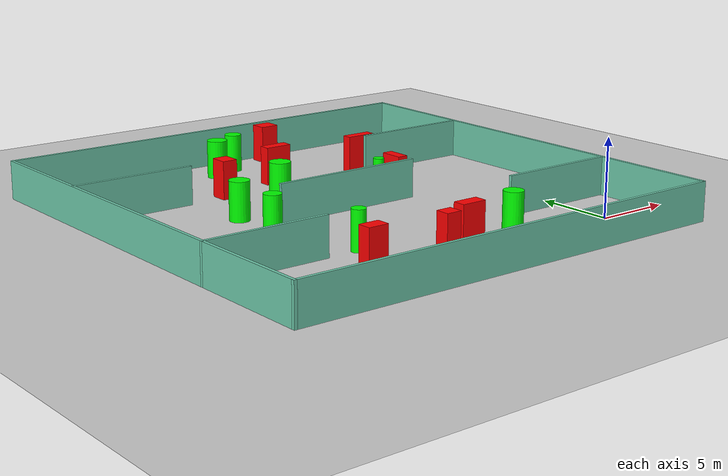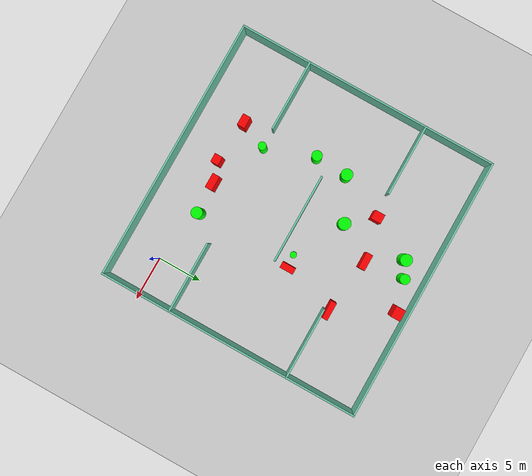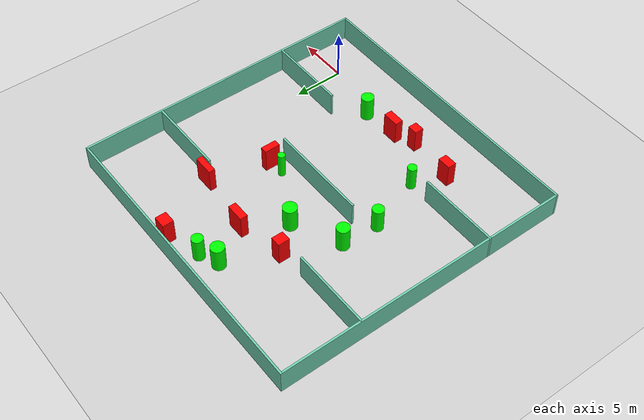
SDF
<sdf version="1.7">
 <world name="default">
  <light name="sun" type="directional">
   <pose>0 0 10 0 -0 0</pose>
   <diffuse>0.8 0.8 0.8 1</diffuse>
   <specular>0.2 0.2 0.2 1</specular>
   <attenuation>
    <range>1000</range>
    <constant>0.9</constant>
    <linear>0.01</linear>
    <quadratic>0.001</quadratic>
   </attenuation>
   <direction>-0.5 0.1 -0.9</direction>
   <spot><inner_angle>0</inner_angle><outer_angle>0</outer_angle><falloff>0</falloff></spot>
  </light>
  <model name="ground_plane">
   <static>1</static>
   <link name="link">
    <collision name="collision">
     <geometry><plane><normal>0 0 1</normal><size>100 100</size></plane></geometry>
     <surface>
      <contact><collide_bitmask>65535</collide_bitmask></contact>
      <friction><ode><mu>100</mu><mu2>50</mu2></ode></friction>
     </surface>
    </collision>
    <visual name="visual">
     <cast_shadows>0</cast_shadows>
     <geometry><plane><normal>0 0 1</normal><size>100 100</size></plane></geometry>
     <material>
      <script><uri>file://media/materials/scripts/gazebo.material</uri><name>Gazebo/Grey</name></script>
     </material>
    </visual>
   </link>
  </model>
  <gravity>0 0 -9.8</gravity>
  <magnetic_field>6e-06 2.3e-05 -4.2e-05</magnetic_field>
  <atmosphere type="adiabatic"/>
  <physics type="ode">
   <max_step_size>0.001</max_step_size>
   <real_time_factor>1</real_time_factor>
   <real_time_update_rate>1000</real_time_update_rate>
  </physics>
  <scene><ambient>0.4 0.4 0.4 1</ambient><background>0.7 0.7 0.7 1</background><shadows>1</shadows></scene>
  <spherical_coordinates>
   <surface_model>EARTH_WGS84</surface_model>
   <latitude_deg>0</latitude_deg>
   <longitude_deg>0</longitude_deg>
   <elevation>0</elevation>
   <heading_deg>0</heading_deg>
  </spherical_coordinates>
  <model name="my_base_walls">
   <link name="Wall_10">
    <collision name="Wall_10_Collision">
     <geometry><box><size>8.2 0.2 2.5</size></box></geometry>
     <pose>0 0 1.25 0 -0 0</pose>
    </collision>
    <visual name="Wall_10_Visual">
     <pose>0 0 1.25 0 -0 0</pose>
     <geometry><box><size>8.2 0.2 2.5</size></box></geometry>
     <material>
      <script><uri>file://media/materials/scripts/gazebo.material</uri><name>Gazebo/Grey</name></script>
      <ambient>0.435294 0.796078 0.67451 1</ambient>
     </material>
     <meta><layer>0</layer></meta>
    </visual>
    <pose>-11 -7 0 0 -0 0</pose>
   </link>
   <link name="Wall_12">
    <collision name="Wall_12_Collision">
     <geometry><box><size>8.2 0.2 2.5</size></box></geometry>
     <pose>0 0 1.25 0 -0 0</pose>
    </collision>
    <visual name="Wall_12_Visual">
     <pose>0 0 1.25 0 -0 0</pose>
     <geometry><box><size>8.2 0.2 2.5</size></box></geometry>
     <material>
      <script><uri>file://media/materials/scripts/gazebo.material</uri><name>Gazebo/Grey</name></script>
      <ambient>0.435294 0.796078 0.67451 1</ambient>
     </material>
     <meta><layer>0</layer></meta>
    </visual>
    <pose>-11 7 0 0 -0 0</pose>
   </link>
   <link name="Wall_14">
    <collision name="Wall_14_Collision">
     <geometry><box><size>8.2 0.2 2.5</size></box></geometry>
     <pose>0 0 1.25 0 -0 0</pose>
    </collision>
    <visual name="Wall_14_Visual">
     <pose>0 0 1.25 0 -0 0</pose>
     <geometry><box><size>8.2 0.2 2.5</size></box></geometry>
     <material>
      <script><uri>file://media/materials/scripts/gazebo.material</uri><name>Gazebo/Grey</name></script>
      <ambient>0.435294 0.796078 0.67451 1</ambient>
     </material>
     <meta><layer>0</layer></meta>
    </visual>
    <pose>11 7 0 0 -0 3.14159</pose>
   </link>
   <link name="Wall_16">
    <collision name="Wall_16_Collision">
     <geometry><box><size>10.2 0.2 2.5</size></box></geometry>
     <pose>0 0 1.25 0 -0 0</pose>
    </collision>
    <visual name="Wall_16_Visual">
     <pose>0 0 1.25 0 -0 0</pose>
     <geometry><box><size>10.2 0.2 2.5</size></box></geometry>
     <material>
      <script><uri>file://media/materials/scripts/gazebo.material</uri><name>Gazebo/Grey</name></script>
      <ambient>0.435294 0.796078 0.67451 1</ambient>
     </material>
     <meta><layer>0</layer></meta>
    </visual>
    <pose>0 0 0 0 -0 3.14159</pose>
   </link>
   <link name="Wall_2">
    <collision name="Wall_2_Collision">
     <geometry><box><size>30.2 0.2 2.5</size></box></geometry>
     <pose>0 0 1.25 0 -0 0</pose>
    </collision>
    <visual name="Wall_2_Visual">
     <pose>0 0 1.25 0 -0 0</pose>
     <geometry><box><size>30.2 0.2 2.5</size></box></geometry>
     <material>
      <script><uri>file://media/materials/scripts/gazebo.material</uri><name>Gazebo/Grey</name></script>
      <ambient>0.435294 0.796078 0.67451 1</ambient>
     </material>
     <meta><layer>0</layer></meta>
    </visual>
    <pose>0 -15 0 0 -0 3.14159</pose>
   </link>
   <link name="Wall_3">
    <collision name="Wall_3_Collision">
     <geometry><box><size>30.2 0.2 2.5</size></box></geometry>
     <pose>0 0 1.25 0 -0 0</pose>
    </collision>
    <visual name="Wall_3_Visual">
     <pose>0 0 1.25 0 -0 0</pose>
     <geometry><box><size>30.2 0.2 2.5</size></box></geometry>
     <material>
      <script><uri>file://media/materials/scripts/gazebo.material</uri><name>Gazebo/Grey</name></script>
      <ambient>0.435294 0.796078 0.67451 1</ambient>
     </material>
     <meta><layer>0</layer></meta>
    </visual>
    <pose>-15 0 0 0 -0 1.5708</pose>
   </link>
   <link name="Wall_4">
    <collision name="Wall_4_Collision">
     <geometry><box><size>30.2 0.2 2.5</size></box></geometry>
     <pose>0 0 1.25 0 -0 0</pose>
    </collision>
    <visual name="Wall_4_Visual">
     <pose>0 0 1.25 0 -0 0</pose>
     <geometry><box><size>30.2 0.2 2.5</size></box></geometry>
     <material>
      <script><uri>file://media/materials/scripts/gazebo.material</uri><name>Gazebo/Grey</name></script>
      <ambient>0.435294 0.796078 0.67451 1</ambient>
     </material>
     <meta><layer>0</layer></meta>
    </visual>
    <pose>0 15 0 0 -0 0</pose>
   </link>
   <link name="Wall_6">
    <collision name="Wall_6_Collision">
     <geometry><box><size>30.2 0.2 2.5</size></box></geometry>
     <pose>0 0 1.25 0 -0 0</pose>
    </collision>
    <visual name="Wall_6_Visual">
     <pose>0 0 1.25 0 -0 0</pose>
     <geometry><box><size>30.2 0.2 2.5</size></box></geometry>
     <material>
      <script><uri>file://media/materials/scripts/gazebo.material</uri><name>Gazebo/Grey</name></script>
      <ambient>0.435294 0.796078 0.67451 1</ambient>
     </material>
     <meta><layer>0</layer></meta>
    </visual>
    <pose>15 0 0 0 -0 1.5708</pose>
   </link>
   <link name="Wall_8">
    <collision name="Wall_8_Collision">
     <geometry><box><size>8.2 0.2 2.5</size></box></geometry>
     <pose>0 0 1.25 0 -0 0</pose>
    </collision>
    <visual name="Wall_8_Visual">
     <pose>0 0 1.25 0 -0 0</pose>
     <geometry><box><size>8.2 0.2 2.5</size></box></geometry>
     <material>
      <script><uri>file://media/materials/scripts/gazebo.material</uri><name>Gazebo/Grey</name></script>
      <ambient>0.435294 0.796078 0.67451 1</ambient>
     </material>
     <meta><layer>0</layer></meta>
    </visual>
    <pose>11 -7 0 0 -0 3.14159</pose>
   </link>
   <static>1</static>
   <pose>-11 11 0 0 -0 0</pose>
  </model>
  <model name="cylinder1">
   <static>1</static>
   <link name="link">
    <inertial>
     <mass>1</mass>
     <inertia><ixx>0.5</ixx><ixy>0</ixy><ixz>0</ixz><iyy>0.5</iyy><iyz>0</iyz><izz>1</izz></inertia>
    </inertial>
    <collision name="collision">
     <geometry><cylinder><radius>0.44831866201501747</radius><length>2.5</length></cylinder></geometry>
    </collision>
    <visual name="visual">
     <geometry><cylinder><radius>0.44831866201501747</radius><length>2.5</length></cylinder></geometry>
     <material>
      <ambient>0 1 0 1</ambient>
      <diffuse>0 1 0 1</diffuse>
      <specular>0.1 0.1 0.1 1</specular>
      <emissive>0 0 0 0</emissive>
     </material>
    </visual>
   </link>
   <pose>-15.807781865561793 3.957164447224491 1.25 0 0 0</pose>
  </model>
  <model name="cylinder2">
   <static>1</static>
   <link name="link">
    <inertial>
     <mass>1</mass>
     <inertia><ixx>0.5</ixx><ixy>0</ixy><ixz>0</ixz><iyy>0.5</iyy><iyz>0</iyz><izz>1</izz></inertia>
    </inertial>
    <collision name="collision">
     <geometry><cylinder><radius>0.6936114545926203</radius><length>2.5</length></cylinder></geometry>
    </collision>
    <visual name="visual">
     <geometry><cylinder><radius>0.6936114545926203</radius><length>2.5</length></cylinder></geometry>
     <material>
      <ambient>0 1 0 1</ambient>
      <diffuse>0 1 0 1</diffuse>
      <specular>0.1 0.1 0.1 1</specular>
      <emissive>0 0 0 0</emissive>
     </material>
    </visual>
   </link>
   <pose>-12.92227238842987 15.49933880950626 1.25 0 0 0</pose>
  </model>
  <model name="cylinder3">
   <static>1</static>
   <link name="link">
    <inertial>
     <mass>1</mass>
     <inertia><ixx>0.5</ixx><ixy>0</ixy><ixz>0</ixz><iyy>0.5</iyy><iyz>0</iyz><izz>1</izz></inertia>
    </inertial>
    <collision name="collision">
     <geometry><cylinder><radius>0.35268478373292544</radius><length>2.5</length></cylinder></geometry>
    </collision>
    <visual name="visual">
     <geometry><cylinder><radius>0.35268478373292544</radius><length>2.5</length></cylinder></geometry>
     <material>
      <ambient>0 1 0 1</ambient>
      <diffuse>0 1 0 1</diffuse>
      <specular>0.1 0.1 0.1 1</specular>
      <emissive>0 0 0 0</emissive>
     </material>
    </visual>
   </link>
   <pose>-7.447559282882473 12.422763055796677 1.25 0 0 0</pose>
  </model>
  <model name="cylinder4">
   <static>1</static>
   <link name="link">
    <inertial>
     <mass>1</mass>
     <inertia><ixx>0.5</ixx><ixy>0</ixy><ixz>0</ixz><iyy>0.5</iyy><iyz>0</iyz><izz>1</izz></inertia>
    </inertial>
    <collision name="collision">
     <geometry><cylinder><radius>0.6632686011080747</radius><length>2.5</length></cylinder></geometry>
    </collision>
    <visual name="visual">
     <geometry><cylinder><radius>0.6632686011080747</radius><length>2.5</length></cylinder></geometry>
     <material>
      <ambient>0 1 0 1</ambient>
      <diffuse>0 1 0 1</diffuse>
      <specular>0.1 0.1 0.1 1</specular>
      <emissive>0 0 0 0</emissive>
     </material>
    </visual>
   </link>
   <pose>-12.736705181921577 22.971193129316145 1.25 0 0 0</pose>
  </model>
  <model name="cylinder5">
   <static>1</static>
   <link name="link">
    <inertial>
     <mass>1</mass>
     <inertia><ixx>0.5</ixx><ixy>0</ixy><ixz>0</ixz><iyy>0.5</iyy><iyz>0</iyz><izz>1</izz></inertia>
    </inertial>
    <collision name="collision">
     <geometry><cylinder><radius>0.5696487922767688</radius><length>2.5</length></cylinder></geometry>
    </collision>
    <visual name="visual">
     <geometry><cylinder><radius>0.5696487922767688</radius><length>2.5</length></cylinder></geometry>
     <material>
      <ambient>0 1 0 1</ambient>
      <diffuse>0 1 0 1</diffuse>
      <specular>0.1 0.1 0.1 1</specular>
      <emissive>0 0 0 0</emissive>
     </material>
    </visual>
   </link>
   <pose>-17.73682630628948 9.489453241869224 1.25 0 0 0</pose>
  </model>
  <model name="cylinder6">
   <static>1</static>
   <link name="link">
    <inertial>
     <mass>1</mass>
     <inertia><ixx>0.5</ixx><ixy>0</ixy><ixz>0</ixz><iyy>0.5</iyy><iyz>0</iyz><izz>1</izz></inertia>
    </inertial>
    <collision name="collision">
     <geometry><cylinder><radius>0.6432182943507114</radius><length>2.5</length></cylinder></geometry>
    </collision>
    <visual name="visual">
     <geometry><cylinder><radius>0.6432182943507114</radius><length>2.5</length></cylinder></geometry>
     <material>
      <ambient>0 1 0 1</ambient>
      <diffuse>0 1 0 1</diffuse>
      <specular>0.1 0.1 0.1 1</specular>
      <emissive>0 0 0 0</emissive>
     </material>
    </visual>
   </link>
   <pose>-17.530956168196 13.206119030490417 1.25 0 0 0</pose>
  </model>
  <model name="cylinder7">
   <static>1</static>
   <link name="link">
    <inertial>
     <mass>1</mass>
     <inertia><ixx>0.5</ixx><ixy>0</ixy><ixz>0</ixz><iyy>0.5</iyy><iyz>0</iyz><izz>1</izz></inertia>
    </inertial>
    <collision name="collision">
     <geometry><cylinder><radius>0.5582913543954902</radius><length>2.5</length></cylinder></geometry>
    </collision>
    <visual name="visual">
     <geometry><cylinder><radius>0.5582913543954902</radius><length>2.5</length></cylinder></geometry>
     <material>
      <ambient>0 1 0 1</ambient>
      <diffuse>0 1 0 1</diffuse>
      <specular>0.1 0.1 0.1 1</specular>
      <emissive>0 0 0 0</emissive>
     </material>
    </visual>
   </link>
   <pose>-10.917996656647293 23.820491288753047 1.25 0 0 0</pose>
  </model>
  <model name="cylinder8">
   <static>1</static>
   <link name="link">
    <inertial>
     <mass>1</mass>
     <inertia><ixx>0.5</ixx><ixy>0</ixy><ixz>0</ixz><iyy>0.5</iyy><iyz>0</iyz><izz>1</izz></inertia>
    </inertial>
    <collision name="collision">
     <geometry><cylinder><radius>0.6291642385826841</radius><length>2.5</length></cylinder></geometry>
    </collision>
    <visual name="visual">
     <geometry><cylinder><radius>0.6291642385826841</radius><length>2.5</length></cylinder></geometry>
     <material>
      <ambient>0 1 0 1</ambient>
      <diffuse>0 1 0 1</diffuse>
      <specular>0.1 0.1 0.1 1</specular>
      <emissive>0 0 0 0</emissive>
     </material>
    </visual>
   </link>
   <pose>-6.335661327778549 1.4355758026455474 1.25 0 0 0</pose>
  </model>
  <model name="box1">
   <static>1</static>
   <link name="link">
    <inertial>
     <mass>1</mass>
     <inertia><ixx>0.083</ixx><ixy>0</ixy><ixz>0</ixz><iyy>0.083</iyy><iyz>0</iyz><izz>0.083</izz></inertia>
    </inertial>
    <collision name="collision">
     <geometry><box><size>1.6718461843493309 0.819425430054747 2.5</size></box></geometry>
    </collision>
    <visual name="visual">
     <geometry><box><size>1.6718461843493309 0.819425430054747 2.5</size></box></geometry>
     <material>
      <ambient>1 0 0 1</ambient>
      <diffuse>1 0 0 1</diffuse>
      <specular>0.1 0.1 0.1 1</specular>
      <emissive>0 0 0 0</emissive>
     </material>
    </visual>
    <sensor name="my_contact" type="contact">
     <contact><collision>box_collision</collision><topic>__default_topic__</topic></contact>
    </sensor>
   </link>
   <pose>-9.954424866432186 1.2559871586504023 1.25 0 0 0</pose>
  </model>
  <model name="box2">
   <static>1</static>
   <link name="link">
    <inertial>
     <mass>1</mass>
     <inertia><ixx>0.083</ixx><ixy>0</ixy><ixz>0</ixz><iyy>0.083</iyy><iyz>0</iyz><izz>0.083</izz></inertia>
    </inertial>
    <collision name="collision">
     <geometry><box><size>1.3368318768686147 0.8753744190171997 2.5</size></box></geometry>
    </collision>
    <visual name="visual">
     <geometry><box><size>1.3368318768686147 0.8753744190171997 2.5</size></box></geometry>
     <material>
      <ambient>1 0 0 1</ambient>
      <diffuse>1 0 0 1</diffuse>
      <specular>0.1 0.1 0.1 1</specular>
      <emissive>0 0 0 0</emissive>
     </material>
    </visual>
    <sensor name="my_contact" type="contact">
     <contact><collision>box_collision</collision><topic>__default_topic__</topic></contact>
    </sensor>
   </link>
   <pose>-17.164290165089895 0.966707244185474 1.25 0 0 0</pose>
  </model>
  <model name="box3">
   <static>1</static>
   <link name="link">
    <inertial>
     <mass>1</mass>
     <inertia><ixx>0.083</ixx><ixy>0</ixy><ixz>0</ixz><iyy>0.083</iyy><iyz>0</iyz><izz>0.083</izz></inertia>
    </inertial>
    <collision name="collision">
     <geometry><box><size>2.0332242872479265 0.634169141336373 2.5</size></box></geometry>
    </collision>
    <visual name="visual">
     <geometry><box><size>2.0332242872479265 0.634169141336373 2.5</size></box></geometry>
     <material>
      <ambient>1 0 0 1</ambient>
      <diffuse>1 0 0 1</diffuse>
      <specular>0.1 0.1 0.1 1</specular>
      <emissive>0 0 0 0</emissive>
     </material>
    </visual>
    <sensor name="my_contact" type="contact">
     <contact><collision>box_collision</collision><topic>__default_topic__</topic></contact>
    </sensor>
   </link>
   <pose>-4.233510728356563 18.524921353024535 1.25 0 0 0</pose>
  </model>
  <model name="box4">
   <static>1</static>
   <link name="link">
    <inertial>
     <mass>1</mass>
     <inertia><ixx>0.083</ixx><ixy>0</ixy><ixz>0</ixz><iyy>0.083</iyy><iyz>0</iyz><izz>0.083</izz></inertia>
    </inertial>
    <collision name="collision">
     <geometry><box><size>1.2611390391329844 1.1051569454547658 2.5</size></box></geometry>
    </collision>
    <visual name="visual">
     <geometry><box><size>1.2611390391329844 1.1051569454547658 2.5</size></box></geometry>
     <material>
      <ambient>1 0 0 1</ambient>
      <diffuse>1 0 0 1</diffuse>
      <specular>0.1 0.1 0.1 1</specular>
      <emissive>0 0 0 0</emissive>
     </material>
    </visual>
    <sensor name="my_contact" type="contact">
     <contact><collision>box_collision</collision><topic>__default_topic__</topic></contact>
    </sensor>
   </link>
   <pose>-7.461776683108079 24.923386839601225 1.25 0 0 0</pose>
  </model>
  <model name="box5">
   <static>1</static>
   <link name="link">
    <inertial>
     <mass>1</mass>
     <inertia><ixx>0.083</ixx><ixy>0</ixy><ixz>0</ixz><iyy>0.083</iyy><iyz>0</iyz><izz>0.083</izz></inertia>
    </inertial>
    <collision name="collision">
     <geometry><box><size>0.6937894403250929 1.5565475744563895 2.5</size></box></geometry>
    </collision>
    <visual name="visual">
     <geometry><box><size>0.6937894403250929 1.5565475744563895 2.5</size></box></geometry>
     <material>
      <ambient>1 0 0 1</ambient>
      <diffuse>1 0 0 1</diffuse>
      <specular>0.1 0.1 0.1 1</specular>
      <emissive>0 0 0 0</emissive>
     </material>
    </visual>
    <sensor name="my_contact" type="contact">
     <contact><collision>box_collision</collision><topic>__default_topic__</topic></contact>
    </sensor>
   </link>
   <pose>-5.9654641638421815 12.579391399098807 1.25 0 0 0</pose>
  </model>
  <model name="box6">
   <static>1</static>
   <link name="link">
    <inertial>
     <mass>1</mass>
     <inertia><ixx>0.083</ixx><ixy>0</ixy><ixz>0</ixz><iyy>0.083</iyy><iyz>0</iyz><izz>0.083</izz></inertia>
    </inertial>
    <collision name="collision">
     <geometry><box><size>1.0066568645758454 0.9055056019882649 2.5</size></box></geometry>
    </collision>
    <visual name="visual">
     <geometry><box><size>1.0066568645758454 0.9055056019882649 2.5</size></box></geometry>
     <material>
      <ambient>1 0 0 1</ambient>
      <diffuse>1 0 0 1</diffuse>
      <specular>0.1 0.1 0.1 1</specular>
      <emissive>0 0 0 0</emissive>
     </material>
    </visual>
    <sensor name="my_contact" type="contact">
     <contact><collision>box_collision</collision><topic>__default_topic__</topic></contact>
    </sensor>
   </link>
   <pose>-12.232207344516773 0.471515527975114 1.25 0 0 0</pose>
  </model>
  <model name="box7">
   <static>1</static>
   <link name="link">
    <inertial>
     <mass>1</mass>
     <inertia><ixx>0.083</ixx><ixy>0</ixy><ixz>0</ixz><iyy>0.083</iyy><iyz>0</iyz><izz>0.083</izz></inertia>
    </inertial>
    <collision name="collision">
     <geometry><box><size>1.828371252127913 0.753668583157663 2.5</size></box></geometry>
    </collision>
    <visual name="visual">
     <geometry><box><size>1.828371252127913 0.753668583157663 2.5</size></box></geometry>
     <material>
      <ambient>1 0 0 1</ambient>
      <diffuse>1 0 0 1</diffuse>
      <specular>0.1 0.1 0.1 1</specular>
      <emissive>0 0 0 0</emissive>
     </material>
    </visual>
    <sensor name="my_contact" type="contact">
     <contact><collision>box_collision</collision><topic>__default_topic__</topic></contact>
    </sensor>
   </link>
   <pose>-10.537297822433192 19.342120364668382 1.25 0 0 0</pose>
  </model>
  <model name="box8">
   <static>1</static>
   <link name="link">
    <inertial>
     <mass>1</mass>
     <inertia><ixx>0.083</ixx><ixy>0</ixy><ixz>0</ixz><iyy>0.083</iyy><iyz>0</iyz><izz>0.083</izz></inertia>
    </inertial>
    <collision name="collision">
     <geometry><box><size>1.0231225204701708 1.1701093976188983 2.5</size></box></geometry>
    </collision>
    <visual name="visual">
     <geometry><box><size>1.0231225204701708 1.1701093976188983 2.5</size></box></geometry>
     <material>
      <ambient>1 0 0 1</ambient>
      <diffuse>1 0 0 1</diffuse>
      <specular>0.1 0.1 0.1 1</specular>
      <emissive>0 0 0 0</emissive>
     </material>
    </visual>
    <sensor name="my_contact" type="contact">
     <contact><collision>box_collision</collision><topic>__default_topic__</topic></contact>
    </sensor>
   </link>
   <pose>-15.253225430407893 18.205134860817072 1.25 0 0 0</pose>
  </model>
 </world>
</sdf>
